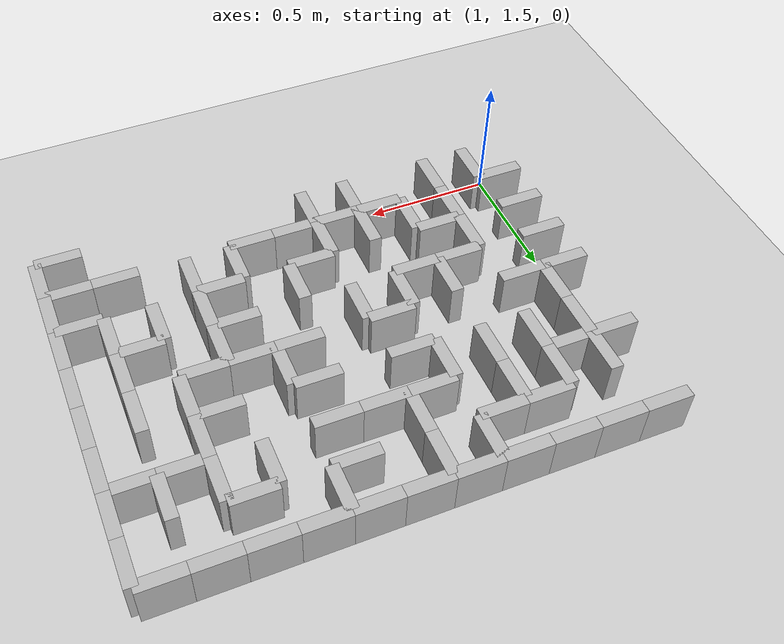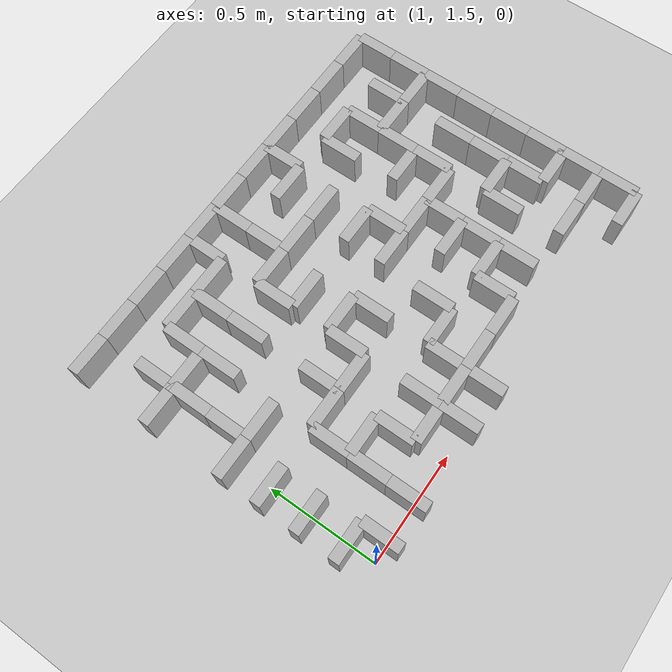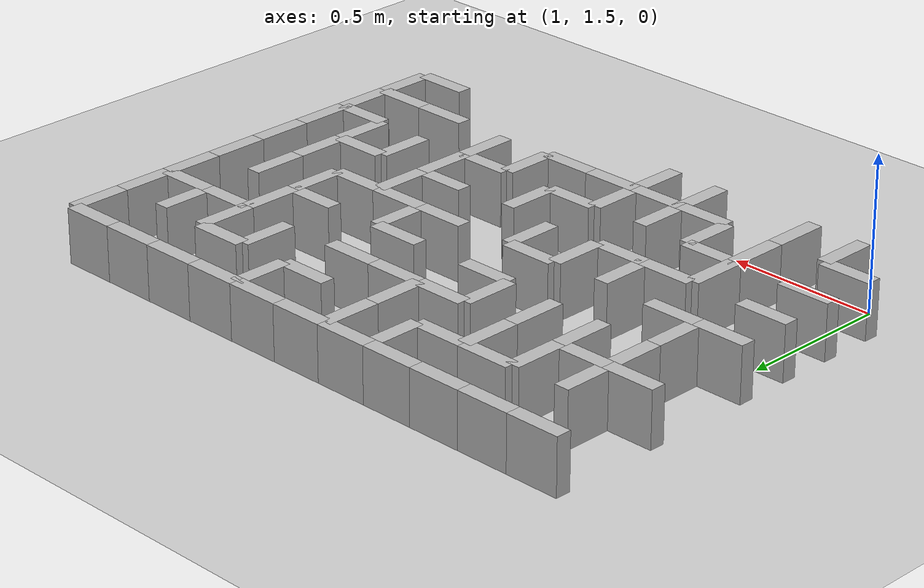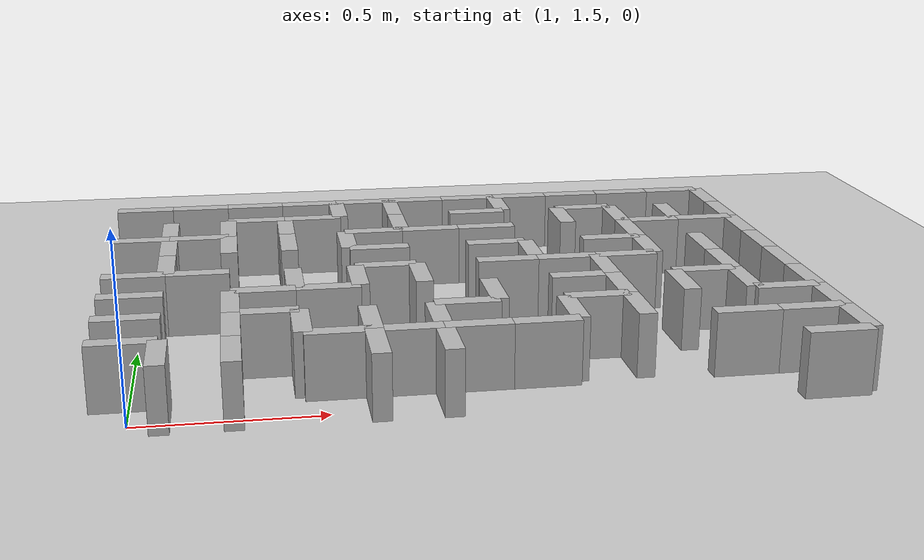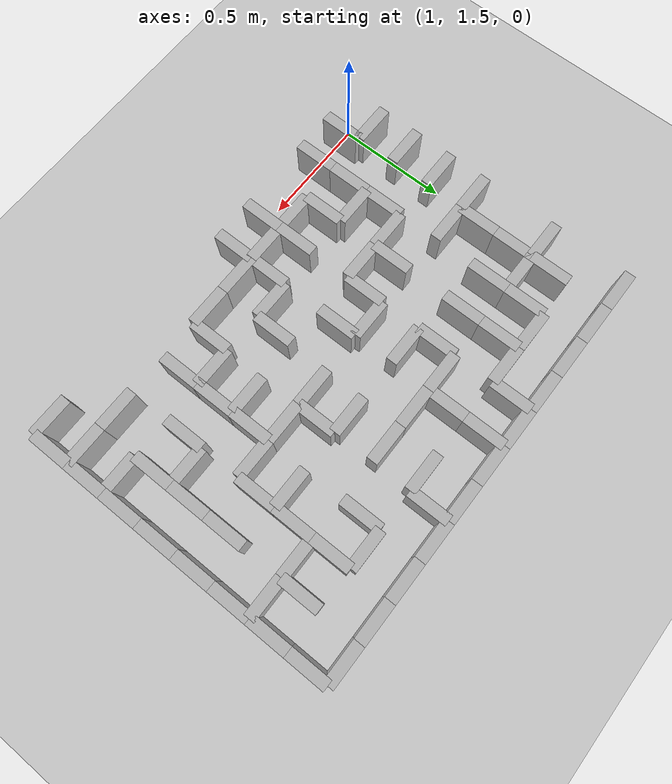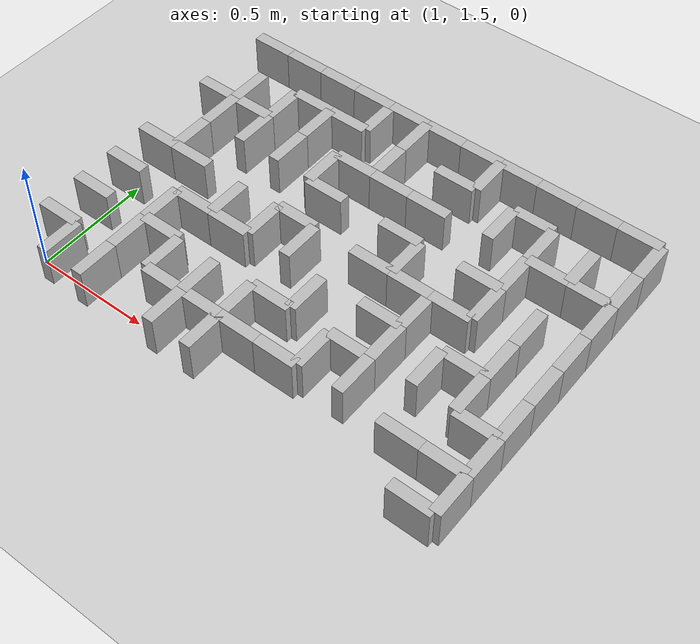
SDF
<sdf version="1.6">
 <world name="default">
  <model name="ground_plane">
   <static>1</static>
   <link name="link">
    <collision name="collision">
     <geometry><plane><normal>0 0 1</normal><size>100 100</size></plane></geometry>
     <surface><friction><ode><mu>100</mu><mu2>50</mu2></ode></friction></surface>
    </collision>
    <visual name="visual">
     <cast_shadows>0</cast_shadows>
     <geometry><plane><normal>0 0 1</normal><size>100 100</size></plane></geometry>
     <material>
      <script><uri>file://media/materials/scripts/gazebo.material</uri><name>Gazebo/Grey</name></script>
     </material>
    </visual>
   </link>
  </model>
  <model name="labyrinth_wall276">
   <pose>1.080000 1.530000 0.09 0 0 1.570796</pose>
   <link name="link">
    <inertial><mass>3.0</mass></inertial>
    <collision name="collision"><geometry><box><size>0.180 0.050 0.180</size></box></geometry></collision>
    <visual name="visual"><geometry><box><size>0.180 0.050 0.180</size></box></geometry></visual>
   </link>
   <static>true</static>
  </model>
  <model name="labyrinth_wall278">
   <pose>1.260000 1.530000 0.09 0 0 1.570796</pose>
   <link name="link">
    <inertial><mass>3.0</mass></inertial>
    <collision name="collision"><geometry><box><size>0.180 0.050 0.180</size></box></geometry></collision>
    <visual name="visual"><geometry><box><size>0.180 0.050 0.180</size></box></geometry></visual>
   </link>
   <static>true</static>
  </model>
  <model name="labyrinth_wall282">
   <pose>1.620000 1.530000 0.09 0 0 1.570796</pose>
   <link name="link">
    <inertial><mass>3.0</mass></inertial>
    <collision name="collision"><geometry><box><size>0.180 0.050 0.180</size></box></geometry></collision>
    <visual name="visual"><geometry><box><size>0.180 0.050 0.180</size></box></geometry></visual>
   </link>
   <static>true</static>
  </model>
  <model name="labyrinth_wall284">
   <pose>1.800000 1.530000 0.09 0 0 1.570796</pose>
   <link name="link">
    <inertial><mass>3.0</mass></inertial>
    <collision name="collision"><geometry><box><size>0.180 0.050 0.180</size></box></geometry></collision>
    <visual name="visual"><geometry><box><size>0.180 0.050 0.180</size></box></geometry></visual>
   </link>
   <static>true</static>
  </model>
  <model name="labyrinth_wall295">
   <pose>2.790000 1.440000 0.09 0 0 0.000000</pose>
   <link name="link">
    <inertial><mass>3.0</mass></inertial>
    <collision name="collision"><geometry><box><size>0.180 0.050 0.180</size></box></geometry></collision>
    <visual name="visual"><geometry><box><size>0.180 0.050 0.180</size></box></geometry></visual>
   </link>
   <static>true</static>
  </model>
  <model name="labyrinth_wall296">
   <pose>2.880000 1.530000 0.09 0 0 1.570796</pose>
   <link name="link">
    <inertial><mass>3.0</mass></inertial>
    <collision name="collision"><geometry><box><size>0.180 0.050 0.180</size></box></geometry></collision>
    <visual name="visual"><geometry><box><size>0.180 0.050 0.180</size></box></geometry></visual>
   </link>
   <static>true</static>
  </model>
  <model name="labyrinth_wall308">
   <pose>0.990000 1.620000 0.09 0 0 0.000000</pose>
   <link name="link">
    <inertial><mass>3.0</mass></inertial>
    <collision name="collision"><geometry><box><size>0.180 0.050 0.180</size></box></geometry></collision>
    <visual name="visual"><geometry><box><size>0.180 0.050 0.180</size></box></geometry></visual>
   </link>
   <static>true</static>
  </model>
  <model name="labyrinth_wall311">
   <pose>1.260000 1.710000 0.09 0 0 1.570796</pose>
   <link name="link">
    <inertial><mass>3.0</mass></inertial>
    <collision name="collision"><geometry><box><size>0.180 0.050 0.180</size></box></geometry></collision>
    <visual name="visual"><geometry><box><size>0.180 0.050 0.180</size></box></geometry></visual>
   </link>
   <static>true</static>
  </model>
  <model name="labyrinth_wall313">
   <pose>1.440000 1.710000 0.09 0 0 1.570796</pose>
   <link name="link">
    <inertial><mass>3.0</mass></inertial>
    <collision name="collision"><geometry><box><size>0.180 0.050 0.180</size></box></geometry></collision>
    <visual name="visual"><geometry><box><size>0.180 0.050 0.180</size></box></geometry></visual>
   </link>
   <static>true</static>
  </model>
  <model name="labyrinth_wall314">
   <pose>1.530000 1.620000 0.09 0 0 0.000000</pose>
   <link name="link">
    <inertial><mass>3.0</mass></inertial>
    <collision name="collision"><geometry><box><size>0.180 0.050 0.180</size></box></geometry></collision>
    <visual name="visual"><geometry><box><size>0.180 0.050 0.180</size></box></geometry></visual>
   </link>
   <static>true</static>
  </model>
  <model name="labyrinth_wall315">
   <pose>1.620000 1.710000 0.09 0 0 1.570796</pose>
   <link name="link">
    <inertial><mass>3.0</mass></inertial>
    <collision name="collision"><geometry><box><size>0.180 0.050 0.180</size></box></geometry></collision>
    <visual name="visual"><geometry><box><size>0.180 0.050 0.180</size></box></geometry></visual>
   </link>
   <static>true</static>
  </model>
  <model name="labyrinth_wall316">
   <pose>1.710000 1.620000 0.09 0 0 0.000000</pose>
   <link name="link">
    <inertial><mass>3.0</mass></inertial>
    <collision name="collision"><geometry><box><size>0.180 0.050 0.180</size></box></geometry></collision>
    <visual name="visual"><geometry><box><size>0.180 0.050 0.180</size></box></geometry></visual>
   </link>
   <static>true</static>
  </model>
  <model name="labyrinth_wall317">
   <pose>1.800000 1.710000 0.09 0 0 1.570796</pose>
   <link name="link">
    <inertial><mass>3.0</mass></inertial>
    <collision name="collision"><geometry><box><size>0.180 0.050 0.180</size></box></geometry></collision>
    <visual name="visual"><geometry><box><size>0.180 0.050 0.180</size></box></geometry></visual>
   </link>
   <static>true</static>
  </model>
  <model name="labyrinth_wall318">
   <pose>1.890000 1.620000 0.09 0 0 0.000000</pose>
   <link name="link">
    <inertial><mass>3.0</mass></inertial>
    <collision name="collision"><geometry><box><size>0.180 0.050 0.180</size></box></geometry></collision>
    <visual name="visual"><geometry><box><size>0.180 0.050 0.180</size></box></geometry></visual>
   </link>
   <static>true</static>
  </model>
  <model name="labyrinth_wall320">
   <pose>2.070000 1.620000 0.09 0 0 0.000000</pose>
   <link name="link">
    <inertial><mass>3.0</mass></inertial>
    <collision name="collision"><geometry><box><size>0.180 0.050 0.180</size></box></geometry></collision>
    <visual name="visual"><geometry><box><size>0.180 0.050 0.180</size></box></geometry></visual>
   </link>
   <static>true</static>
  </model>
  <model name="labyrinth_wall321">
   <pose>2.160000 1.710000 0.09 0 0 1.570796</pose>
   <link name="link">
    <inertial><mass>3.0</mass></inertial>
    <collision name="collision"><geometry><box><size>0.180 0.050 0.180</size></box></geometry></collision>
    <visual name="visual"><geometry><box><size>0.180 0.050 0.180</size></box></geometry></visual>
   </link>
   <static>true</static>
  </model>
  <model name="labyrinth_wall323">
   <pose>2.340000 1.710000 0.09 0 0 1.570796</pose>
   <link name="link">
    <inertial><mass>3.0</mass></inertial>
    <collision name="collision"><geometry><box><size>0.180 0.050 0.180</size></box></geometry></collision>
    <visual name="visual"><geometry><box><size>0.180 0.050 0.180</size></box></geometry></visual>
   </link>
   <static>true</static>
  </model>
  <model name="labyrinth_wall326">
   <pose>2.610000 1.620000 0.09 0 0 0.000000</pose>
   <link name="link">
    <inertial><mass>3.0</mass></inertial>
    <collision name="collision"><geometry><box><size>0.180 0.050 0.180</size></box></geometry></collision>
    <visual name="visual"><geometry><box><size>0.180 0.050 0.180</size></box></geometry></visual>
   </link>
   <static>true</static>
  </model>
  <model name="labyrinth_wall328">
   <pose>2.790000 1.620000 0.09 0 0 0.000000</pose>
   <link name="link">
    <inertial><mass>3.0</mass></inertial>
    <collision name="collision"><geometry><box><size>0.180 0.050 0.180</size></box></geometry></collision>
    <visual name="visual"><geometry><box><size>0.180 0.050 0.180</size></box></geometry></visual>
   </link>
   <static>true</static>
  </model>
  <model name="labyrinth_wall329">
   <pose>2.880000 1.710000 0.09 0 0 1.570796</pose>
   <link name="link">
    <inertial><mass>3.0</mass></inertial>
    <collision name="collision"><geometry><box><size>0.180 0.050 0.180</size></box></geometry></collision>
    <visual name="visual"><geometry><box><size>0.180 0.050 0.180</size></box></geometry></visual>
   </link>
   <static>true</static>
  </model>
  <model name="labyrinth_wall341">
   <pose>0.990000 1.800000 0.09 0 0 0.000000</pose>
   <link name="link">
    <inertial><mass>3.0</mass></inertial>
    <collision name="collision"><geometry><box><size>0.180 0.050 0.180</size></box></geometry></collision>
    <visual name="visual"><geometry><box><size>0.180 0.050 0.180</size></box></geometry></visual>
   </link>
   <static>true</static>
  </model>
  <model name="labyrinth_wall344">
   <pose>1.260000 1.890000 0.09 0 0 1.570796</pose>
   <link name="link">
    <inertial><mass>3.0</mass></inertial>
    <collision name="collision"><geometry><box><size>0.180 0.050 0.180</size></box></geometry></collision>
    <visual name="visual"><geometry><box><size>0.180 0.050 0.180</size></box></geometry></visual>
   </link>
   <static>true</static>
  </model>
  <model name="labyrinth_wall345">
   <pose>1.350000 1.800000 0.09 0 0 0.000000</pose>
   <link name="link">
    <inertial><mass>3.0</mass></inertial>
    <collision name="collision"><geometry><box><size>0.180 0.050 0.180</size></box></geometry></collision>
    <visual name="visual"><geometry><box><size>0.180 0.050 0.180</size></box></geometry></visual>
   </link>
   <static>true</static>
  </model>
  <model name="labyrinth_wall351">
   <pose>1.890000 1.800000 0.09 0 0 0.000000</pose>
   <link name="link">
    <inertial><mass>3.0</mass></inertial>
    <collision name="collision"><geometry><box><size>0.180 0.050 0.180</size></box></geometry></collision>
    <visual name="visual"><geometry><box><size>0.180 0.050 0.180</size></box></geometry></visual>
   </link>
   <static>true</static>
  </model>
  <model name="labyrinth_wall352">
   <pose>1.980000 1.890000 0.09 0 0 1.570796</pose>
   <link name="link">
    <inertial><mass>3.0</mass></inertial>
    <collision name="collision"><geometry><box><size>0.180 0.050 0.180</size></box></geometry></collision>
    <visual name="visual"><geometry><box><size>0.180 0.050 0.180</size></box></geometry></visual>
   </link>
   <static>true</static>
  </model>
  <model name="labyrinth_wall355">
   <pose>2.250000 1.800000 0.09 0 0 0.000000</pose>
   <link name="link">
    <inertial><mass>3.0</mass></inertial>
    <collision name="collision"><geometry><box><size>0.180 0.050 0.180</size></box></geometry></collision>
    <visual name="visual"><geometry><box><size>0.180 0.050 0.180</size></box></geometry></visual>
   </link>
   <static>true</static>
  </model>
  <model name="labyrinth_wall356">
   <pose>2.340000 1.890000 0.09 0 0 1.570796</pose>
   <link name="link">
    <inertial><mass>3.0</mass></inertial>
    <collision name="collision"><geometry><box><size>0.180 0.050 0.180</size></box></geometry></collision>
    <visual name="visual"><geometry><box><size>0.180 0.050 0.180</size></box></geometry></visual>
   </link>
   <static>true</static>
  </model>
  <model name="labyrinth_wall358">
   <pose>2.520000 1.890000 0.09 0 0 1.570796</pose>
   <link name="link">
    <inertial><mass>3.0</mass></inertial>
    <collision name="collision"><geometry><box><size>0.180 0.050 0.180</size></box></geometry></collision>
    <visual name="visual"><geometry><box><size>0.180 0.050 0.180</size></box></geometry></visual>
   </link>
   <static>true</static>
  </model>
  <model name="labyrinth_wall360">
   <pose>2.700000 1.890000 0.09 0 0 1.570796</pose>
   <link name="link">
    <inertial><mass>3.0</mass></inertial>
    <collision name="collision"><geometry><box><size>0.180 0.050 0.180</size></box></geometry></collision>
    <visual name="visual"><geometry><box><size>0.180 0.050 0.180</size></box></geometry></visual>
   </link>
   <static>true</static>
  </model>
  <model name="labyrinth_wall361">
   <pose>2.790000 1.800000 0.09 0 0 0.000000</pose>
   <link name="link">
    <inertial><mass>3.0</mass></inertial>
    <collision name="collision"><geometry><box><size>0.180 0.050 0.180</size></box></geometry></collision>
    <visual name="visual"><geometry><box><size>0.180 0.050 0.180</size></box></geometry></visual>
   </link>
   <static>true</static>
  </model>
  <model name="labyrinth_wall362">
   <pose>2.880000 1.890000 0.09 0 0 1.570796</pose>
   <link name="link">
    <inertial><mass>3.0</mass></inertial>
    <collision name="collision"><geometry><box><size>0.180 0.050 0.180</size></box></geometry></collision>
    <visual name="visual"><geometry><box><size>0.180 0.050 0.180</size></box></geometry></visual>
   </link>
   <static>true</static>
  </model>
  <model name="labyrinth_wall374">
   <pose>0.990000 1.980000 0.09 0 0 0.000000</pose>
   <link name="link">
    <inertial><mass>3.0</mass></inertial>
    <collision name="collision"><geometry><box><size>0.180 0.050 0.180</size></box></geometry></collision>
    <visual name="visual"><geometry><box><size>0.180 0.050 0.180</size></box></geometry></visual>
   </link>
   <static>true</static>
  </model>
  <model name="labyrinth_wall378">
   <pose>1.350000 1.980000 0.09 0 0 0.000000</pose>
   <link name="link">
    <inertial><mass>3.0</mass></inertial>
    <collision name="collision"><geometry><box><size>0.180 0.050 0.180</size></box></geometry></collision>
    <visual name="visual"><geometry><box><size>0.180 0.050 0.180</size></box></geometry></visual>
   </link>
   <static>true</static>
  </model>
  <model name="labyrinth_wall379">
   <pose>1.440000 2.070000 0.09 0 0 1.570796</pose>
   <link name="link">
    <inertial><mass>3.0</mass></inertial>
    <collision name="collision"><geometry><box><size>0.180 0.050 0.180</size></box></geometry></collision>
    <visual name="visual"><geometry><box><size>0.180 0.050 0.180</size></box></geometry></visual>
   </link>
   <static>true</static>
  </model>
  <model name="labyrinth_wall380">
   <pose>1.530000 1.980000 0.09 0 0 0.000000</pose>
   <link name="link">
    <inertial><mass>3.0</mass></inertial>
    <collision name="collision"><geometry><box><size>0.180 0.050 0.180</size></box></geometry></collision>
    <visual name="visual"><geometry><box><size>0.180 0.050 0.180</size></box></geometry></visual>
   </link>
   <static>true</static>
  </model>
  <model name="labyrinth_wall381">
   <pose>1.620000 2.070000 0.09 0 0 1.570796</pose>
   <link name="link">
    <inertial><mass>3.0</mass></inertial>
    <collision name="collision"><geometry><box><size>0.180 0.050 0.180</size></box></geometry></collision>
    <visual name="visual"><geometry><box><size>0.180 0.050 0.180</size></box></geometry></visual>
   </link>
   <static>true</static>
  </model>
  <model name="labyrinth_wall383">
   <pose>1.800000 2.070000 0.09 0 0 1.570796</pose>
   <link name="link">
    <inertial><mass>3.0</mass></inertial>
    <collision name="collision"><geometry><box><size>0.180 0.050 0.180</size></box></geometry></collision>
    <visual name="visual"><geometry><box><size>0.180 0.050 0.180</size></box></geometry></visual>
   </link>
   <static>true</static>
  </model>
  <model name="labyrinth_wall388">
   <pose>2.250000 1.980000 0.09 0 0 0.000000</pose>
   <link name="link">
    <inertial><mass>3.0</mass></inertial>
    <collision name="collision"><geometry><box><size>0.180 0.050 0.180</size></box></geometry></collision>
    <visual name="visual"><geometry><box><size>0.180 0.050 0.180</size></box></geometry></visual>
   </link>
   <static>true</static>
  </model>
  <model name="labyrinth_wall389">
   <pose>2.340000 2.070000 0.09 0 0 1.570796</pose>
   <link name="link">
    <inertial><mass>3.0</mass></inertial>
    <collision name="collision"><geometry><box><size>0.180 0.050 0.180</size></box></geometry></collision>
    <visual name="visual"><geometry><box><size>0.180 0.050 0.180</size></box></geometry></visual>
   </link>
   <static>true</static>
  </model>
  <model name="labyrinth_wall392">
   <pose>2.610000 1.980000 0.09 0 0 0.000000</pose>
   <link name="link">
    <inertial><mass>3.0</mass></inertial>
    <collision name="collision"><geometry><box><size>0.180 0.050 0.180</size></box></geometry></collision>
    <visual name="visual"><geometry><box><size>0.180 0.050 0.180</size></box></geometry></visual>
   </link>
   <static>true</static>
  </model>
  <model name="labyrinth_wall393">
   <pose>2.700000 2.070000 0.09 0 0 1.570796</pose>
   <link name="link">
    <inertial><mass>3.0</mass></inertial>
    <collision name="collision"><geometry><box><size>0.180 0.050 0.180</size></box></geometry></collision>
    <visual name="visual"><geometry><box><size>0.180 0.050 0.180</size></box></geometry></visual>
   </link>
   <static>true</static>
  </model>
  <model name="labyrinth_wall395">
   <pose>2.880000 2.070000 0.09 0 0 1.570796</pose>
   <link name="link">
    <inertial><mass>3.0</mass></inertial>
    <collision name="collision"><geometry><box><size>0.180 0.050 0.180</size></box></geometry></collision>
    <visual name="visual"><geometry><box><size>0.180 0.050 0.180</size></box></geometry></visual>
   </link>
   <static>true</static>
  </model>
  <model name="labyrinth_wall407">
   <pose>0.990000 2.160000 0.09 0 0 0.000000</pose>
   <link name="link">
    <inertial><mass>3.0</mass></inertial>
    <collision name="collision"><geometry><box><size>0.180 0.050 0.180</size></box></geometry></collision>
    <visual name="visual"><geometry><box><size>0.180 0.050 0.180</size></box></geometry></visual>
   </link>
   <static>true</static>
  </model>
  <model name="labyrinth_wall408">
   <pose>1.080000 2.250000 0.09 0 0 1.570796</pose>
   <link name="link">
    <inertial><mass>3.0</mass></inertial>
    <collision name="collision"><geometry><box><size>0.180 0.050 0.180</size></box></geometry></collision>
    <visual name="visual"><geometry><box><size>0.180 0.050 0.180</size></box></geometry></visual>
   </link>
   <static>true</static>
  </model>
  <model name="labyrinth_wall409">
   <pose>1.170000 2.160000 0.09 0 0 0.000000</pose>
   <link name="link">
    <inertial><mass>3.0</mass></inertial>
    <collision name="collision"><geometry><box><size>0.180 0.050 0.180</size></box></geometry></collision>
    <visual name="visual"><geometry><box><size>0.180 0.050 0.180</size></box></geometry></visual>
   </link>
   <static>true</static>
  </model>
  <model name="labyrinth_wall415">
   <pose>1.710000 2.160000 0.09 0 0 0.000000</pose>
   <link name="link">
    <inertial><mass>3.0</mass></inertial>
    <collision name="collision"><geometry><box><size>0.180 0.050 0.180</size></box></geometry></collision>
    <visual name="visual"><geometry><box><size>0.180 0.050 0.180</size></box></geometry></visual>
   </link>
   <static>true</static>
  </model>
  <model name="labyrinth_wall419">
   <pose>2.070000 2.160000 0.09 0 0 0.000000</pose>
   <link name="link">
    <inertial><mass>3.0</mass></inertial>
    <collision name="collision"><geometry><box><size>0.180 0.050 0.180</size></box></geometry></collision>
    <visual name="visual"><geometry><box><size>0.180 0.050 0.180</size></box></geometry></visual>
   </link>
   <static>true</static>
  </model>
  <model name="labyrinth_wall420">
   <pose>2.160000 2.250000 0.09 0 0 1.570796</pose>
   <link name="link">
    <inertial><mass>3.0</mass></inertial>
    <collision name="collision"><geometry><box><size>0.180 0.050 0.180</size></box></geometry></collision>
    <visual name="visual"><geometry><box><size>0.180 0.050 0.180</size></box></geometry></visual>
   </link>
   <static>true</static>
  </model>
  <model name="labyrinth_wall421">
   <pose>2.250000 2.160000 0.09 0 0 0.000000</pose>
   <link name="link">
    <inertial><mass>3.0</mass></inertial>
    <collision name="collision"><geometry><box><size>0.180 0.050 0.180</size></box></geometry></collision>
    <visual name="visual"><geometry><box><size>0.180 0.050 0.180</size></box></geometry></visual>
   </link>
   <static>true</static>
  </model>
  <model name="labyrinth_wall423">
   <pose>2.430000 2.160000 0.09 0 0 0.000000</pose>
   <link name="link">
    <inertial><mass>3.0</mass></inertial>
    <collision name="collision"><geometry><box><size>0.180 0.050 0.180</size></box></geometry></collision>
    <visual name="visual"><geometry><box><size>0.180 0.050 0.180</size></box></geometry></visual>
   </link>
   <static>true</static>
  </model>
  <model name="labyrinth_wall424">
   <pose>2.520000 2.250000 0.09 0 0 1.570796</pose>
   <link name="link">
    <inertial><mass>3.0</mass></inertial>
    <collision name="collision"><geometry><box><size>0.180 0.050 0.180</size></box></geometry></collision>
    <visual name="visual"><geometry><box><size>0.180 0.050 0.180</size></box></geometry></visual>
   </link>
   <static>true</static>
  </model>
  <model name="labyrinth_wall426">
   <pose>2.700000 2.250000 0.09 0 0 1.570796</pose>
   <link name="link">
    <inertial><mass>3.0</mass></inertial>
    <collision name="collision"><geometry><box><size>0.180 0.050 0.180</size></box></geometry></collision>
    <visual name="visual"><geometry><box><size>0.180 0.050 0.180</size></box></geometry></visual>
   </link>
   <static>true</static>
  </model>
  <model name="labyrinth_wall428">
   <pose>2.880000 2.250000 0.09 0 0 1.570796</pose>
   <link name="link">
    <inertial><mass>3.0</mass></inertial>
    <collision name="collision"><geometry><box><size>0.180 0.050 0.180</size></box></geometry></collision>
    <visual name="visual"><geometry><box><size>0.180 0.050 0.180</size></box></geometry></visual>
   </link>
   <static>true</static>
  </model>
  <model name="labyrinth_wall441">
   <pose>1.080000 2.430000 0.09 0 0 1.570796</pose>
   <link name="link">
    <inertial><mass>3.0</mass></inertial>
    <collision name="collision"><geometry><box><size>0.180 0.050 0.180</size></box></geometry></collision>
    <visual name="visual"><geometry><box><size>0.180 0.050 0.180</size></box></geometry></visual>
   </link>
   <static>true</static>
  </model>
  <model name="labyrinth_wall443">
   <pose>1.260000 2.430000 0.09 0 0 1.570796</pose>
   <link name="link">
    <inertial><mass>3.0</mass></inertial>
    <collision name="collision"><geometry><box><size>0.180 0.050 0.180</size></box></geometry></collision>
    <visual name="visual"><geometry><box><size>0.180 0.050 0.180</size></box></geometry></visual>
   </link>
   <static>true</static>
  </model>
  <model name="labyrinth_wall445">
   <pose>1.440000 2.430000 0.09 0 0 1.570796</pose>
   <link name="link">
    <inertial><mass>3.0</mass></inertial>
    <collision name="collision"><geometry><box><size>0.180 0.050 0.180</size></box></geometry></collision>
    <visual name="visual"><geometry><box><size>0.180 0.050 0.180</size></box></geometry></visual>
   </link>
   <static>true</static>
  </model>
  <model name="labyrinth_wall447">
   <pose>1.620000 2.430000 0.09 0 0 1.570796</pose>
   <link name="link">
    <inertial><mass>3.0</mass></inertial>
    <collision name="collision"><geometry><box><size>0.180 0.050 0.180</size></box></geometry></collision>
    <visual name="visual"><geometry><box><size>0.180 0.050 0.180</size></box></geometry></visual>
   </link>
   <static>true</static>
  </model>
  <model name="labyrinth_wall448">
   <pose>1.710000 2.340000 0.09 0 0 0.000000</pose>
   <link name="link">
    <inertial><mass>3.0</mass></inertial>
    <collision name="collision"><geometry><box><size>0.180 0.050 0.180</size></box></geometry></collision>
    <visual name="visual"><geometry><box><size>0.180 0.050 0.180</size></box></geometry></visual>
   </link>
   <static>true</static>
  </model>
  <model name="labyrinth_wall452">
   <pose>2.070000 2.340000 0.09 0 0 0.000000</pose>
   <link name="link">
    <inertial><mass>3.0</mass></inertial>
    <collision name="collision"><geometry><box><size>0.180 0.050 0.180</size></box></geometry></collision>
    <visual name="visual"><geometry><box><size>0.180 0.050 0.180</size></box></geometry></visual>
   </link>
   <static>true</static>
  </model>
  <model name="labyrinth_wall456">
   <pose>2.430000 2.340000 0.09 0 0 0.000000</pose>
   <link name="link">
    <inertial><mass>3.0</mass></inertial>
    <collision name="collision"><geometry><box><size>0.180 0.050 0.180</size></box></geometry></collision>
    <visual name="visual"><geometry><box><size>0.180 0.050 0.180</size></box></geometry></visual>
   </link>
   <static>true</static>
  </model>
  <model name="labyrinth_wall457">
   <pose>2.520000 2.430000 0.09 0 0 1.570796</pose>
   <link name="link">
    <inertial><mass>3.0</mass></inertial>
    <collision name="collision"><geometry><box><size>0.180 0.050 0.180</size></box></geometry></collision>
    <visual name="visual"><geometry><box><size>0.180 0.050 0.180</size></box></geometry></visual>
   </link>
   <static>true</static>
  </model>
  <model name="labyrinth_wall461">
   <pose>2.880000 2.430000 0.09 0 0 1.570796</pose>
   <link name="link">
    <inertial><mass>3.0</mass></inertial>
    <collision name="collision"><geometry><box><size>0.180 0.050 0.180</size></box></geometry></collision>
    <visual name="visual"><geometry><box><size>0.180 0.050 0.180</size></box></geometry></visual>
   </link>
   <static>true</static>
  </model>
  <model name="labyrinth_wall473">
   <pose>0.990000 2.520000 0.09 0 0 0.000000</pose>
   <link name="link">
    <inertial><mass>3.0</mass></inertial>
    <collision name="collision"><geometry><box><size>0.180 0.050 0.180</size></box></geometry></collision>
    <visual name="visual"><geometry><box><size>0.180 0.050 0.180</size></box></geometry></visual>
   </link>
   <static>true</static>
  </model>
  <model name="labyrinth_wall474">
   <pose>1.080000 2.610000 0.09 0 0 1.570796</pose>
   <link name="link">
    <inertial><mass>3.0</mass></inertial>
    <collision name="collision"><geometry><box><size>0.180 0.050 0.180</size></box></geometry></collision>
    <visual name="visual"><geometry><box><size>0.180 0.050 0.180</size></box></geometry></visual>
   </link>
   <static>true</static>
  </model>
  <model name="labyrinth_wall475">
   <pose>1.170000 2.520000 0.09 0 0 0.000000</pose>
   <link name="link">
    <inertial><mass>3.0</mass></inertial>
    <collision name="collision"><geometry><box><size>0.180 0.050 0.180</size></box></geometry></collision>
    <visual name="visual"><geometry><box><size>0.180 0.050 0.180</size></box></geometry></visual>
   </link>
   <static>true</static>
  </model>
  <model name="labyrinth_wall476">
   <pose>1.260000 2.610000 0.09 0 0 1.570796</pose>
   <link name="link">
    <inertial><mass>3.0</mass></inertial>
    <collision name="collision"><geometry><box><size>0.180 0.050 0.180</size></box></geometry></collision>
    <visual name="visual"><geometry><box><size>0.180 0.050 0.180</size></box></geometry></visual>
   </link>
   <static>true</static>
  </model>
  <model name="labyrinth_wall478">
   <pose>1.440000 2.610000 0.09 0 0 1.570796</pose>
   <link name="link">
    <inertial><mass>3.0</mass></inertial>
    <collision name="collision"><geometry><box><size>0.180 0.050 0.180</size></box></geometry></collision>
    <visual name="visual"><geometry><box><size>0.180 0.050 0.180</size></box></geometry></visual>
   </link>
   <static>true</static>
  </model>
  <model name="labyrinth_wall481">
   <pose>1.710000 2.520000 0.09 0 0 0.000000</pose>
   <link name="link">
    <inertial><mass>3.0</mass></inertial>
    <collision name="collision"><geometry><box><size>0.180 0.050 0.180</size></box></geometry></collision>
    <visual name="visual"><geometry><box><size>0.180 0.050 0.180</size></box></geometry></visual>
   </link>
   <static>true</static>
  </model>
  <model name="labyrinth_wall482">
   <pose>1.800000 2.610000 0.09 0 0 1.570796</pose>
   <link name="link">
    <inertial><mass>3.0</mass></inertial>
    <collision name="collision"><geometry><box><size>0.180 0.050 0.180</size></box></geometry></collision>
    <visual name="visual"><geometry><box><size>0.180 0.050 0.180</size></box></geometry></visual>
   </link>
   <static>true</static>
  </model>
  <model name="labyrinth_wall483">
   <pose>1.890000 2.520000 0.09 0 0 0.000000</pose>
   <link name="link">
    <inertial><mass>3.0</mass></inertial>
    <collision name="collision"><geometry><box><size>0.180 0.050 0.180</size></box></geometry></collision>
    <visual name="visual"><geometry><box><size>0.180 0.050 0.180</size></box></geometry></visual>
   </link>
   <static>true</static>
  </model>
  <model name="labyrinth_wall485">
   <pose>2.070000 2.520000 0.09 0 0 0.000000</pose>
   <link name="link">
    <inertial><mass>3.0</mass></inertial>
    <collision name="collision"><geometry><box><size>0.180 0.050 0.180</size></box></geometry></collision>
    <visual name="visual"><geometry><box><size>0.180 0.050 0.180</size></box></geometry></visual>
   </link>
   <static>true</static>
  </model>
  <model name="labyrinth_wall488">
   <pose>2.340000 2.610000 0.09 0 0 1.570796</pose>
   <link name="link">
    <inertial><mass>3.0</mass></inertial>
    <collision name="collision"><geometry><box><size>0.180 0.050 0.180</size></box></geometry></collision>
    <visual name="visual"><geometry><box><size>0.180 0.050 0.180</size></box></geometry></visual>
   </link>
   <static>true</static>
  </model>
  <model name="labyrinth_wall490">
   <pose>2.520000 2.610000 0.09 0 0 1.570796</pose>
   <link name="link">
    <inertial><mass>3.0</mass></inertial>
    <collision name="collision"><geometry><box><size>0.180 0.050 0.180</size></box></geometry></collision>
    <visual name="visual"><geometry><box><size>0.180 0.050 0.180</size></box></geometry></visual>
   </link>
   <static>true</static>
  </model>
  <model name="labyrinth_wall491">
   <pose>2.610000 2.520000 0.09 0 0 0.000000</pose>
   <link name="link">
    <inertial><mass>3.0</mass></inertial>
    <collision name="collision"><geometry><box><size>0.180 0.050 0.180</size></box></geometry></collision>
    <visual name="visual"><geometry><box><size>0.180 0.050 0.180</size></box></geometry></visual>
   </link>
   <static>true</static>
  </model>
  <model name="labyrinth_wall492">
   <pose>2.700000 2.610000 0.09 0 0 1.570796</pose>
   <link name="link">
    <inertial><mass>3.0</mass></inertial>
    <collision name="collision"><geometry><box><size>0.180 0.050 0.180</size></box></geometry></collision>
    <visual name="visual"><geometry><box><size>0.180 0.050 0.180</size></box></geometry></visual>
   </link>
   <static>true</static>
  </model>
  <model name="labyrinth_wall493">
   <pose>2.790000 2.520000 0.09 0 0 0.000000</pose>
   <link name="link">
    <inertial><mass>3.0</mass></inertial>
    <collision name="collision"><geometry><box><size>0.180 0.050 0.180</size></box></geometry></collision>
    <visual name="visual"><geometry><box><size>0.180 0.050 0.180</size></box></geometry></visual>
   </link>
   <static>true</static>
  </model>
  <model name="labyrinth_wall494">
   <pose>2.880000 2.610000 0.09 0 0 1.570796</pose>
   <link name="link">
    <inertial><mass>3.0</mass></inertial>
    <collision name="collision"><geometry><box><size>0.180 0.050 0.180</size></box></geometry></collision>
    <visual name="visual"><geometry><box><size>0.180 0.050 0.180</size></box></geometry></visual>
   </link>
   <static>true</static>
  </model>
  <model name="labyrinth_wall513">
   <pose>0.990000 2.880000 0.09 0 0 0.000000</pose>
   <link name="link">
    <inertial><mass>3.0</mass></inertial>
    <collision name="collision"><geometry><box><size>0.180 0.050 0.180</size></box></geometry></collision>
    <visual name="visual"><geometry><box><size>0.180 0.050 0.180</size></box></geometry></visual>
   </link>
   <static>true</static>
  </model>
  <model name="labyrinth_wall516">
   <pose>1.170000 2.880000 0.09 0 0 0.000000</pose>
   <link name="link">
    <inertial><mass>3.0</mass></inertial>
    <collision name="collision"><geometry><box><size>0.180 0.050 0.180</size></box></geometry></collision>
    <visual name="visual"><geometry><box><size>0.180 0.050 0.180</size></box></geometry></visual>
   </link>
   <static>true</static>
  </model>
  <model name="labyrinth_wall517">
   <pose>1.350000 2.700000 0.09 0 0 0.000000</pose>
   <link name="link">
    <inertial><mass>3.0</mass></inertial>
    <collision name="collision"><geometry><box><size>0.180 0.050 0.180</size></box></geometry></collision>
    <visual name="visual"><geometry><box><size>0.180 0.050 0.180</size></box></geometry></visual>
   </link>
   <static>true</static>
  </model>
  <model name="labyrinth_wall519">
   <pose>1.350000 2.880000 0.09 0 0 0.000000</pose>
   <link name="link">
    <inertial><mass>3.0</mass></inertial>
    <collision name="collision"><geometry><box><size>0.180 0.050 0.180</size></box></geometry></collision>
    <visual name="visual"><geometry><box><size>0.180 0.050 0.180</size></box></geometry></visual>
   </link>
   <static>true</static>
  </model>
  <model name="labyrinth_wall520">
   <pose>1.530000 2.700000 0.09 0 0 0.000000</pose>
   <link name="link">
    <inertial><mass>3.0</mass></inertial>
    <collision name="collision"><geometry><box><size>0.180 0.050 0.180</size></box></geometry></collision>
    <visual name="visual"><geometry><box><size>0.180 0.050 0.180</size></box></geometry></visual>
   </link>
   <static>true</static>
  </model>
  <model name="labyrinth_wall521">
   <pose>1.620000 2.790000 0.09 0 0 1.570796</pose>
   <link name="link">
    <inertial><mass>3.0</mass></inertial>
    <collision name="collision"><geometry><box><size>0.180 0.050 0.180</size></box></geometry></collision>
    <visual name="visual"><geometry><box><size>0.180 0.050 0.180</size></box></geometry></visual>
   </link>
   <static>true</static>
  </model>
  <model name="labyrinth_wall522">
   <pose>1.530000 2.880000 0.09 0 0 0.000000</pose>
   <link name="link">
    <inertial><mass>3.0</mass></inertial>
    <collision name="collision"><geometry><box><size>0.180 0.050 0.180</size></box></geometry></collision>
    <visual name="visual"><geometry><box><size>0.180 0.050 0.180</size></box></geometry></visual>
   </link>
   <static>true</static>
  </model>
  <model name="labyrinth_wall524">
   <pose>1.800000 2.790000 0.09 0 0 1.570796</pose>
   <link name="link">
    <inertial><mass>3.0</mass></inertial>
    <collision name="collision"><geometry><box><size>0.180 0.050 0.180</size></box></geometry></collision>
    <visual name="visual"><geometry><box><size>0.180 0.050 0.180</size></box></geometry></visual>
   </link>
   <static>true</static>
  </model>
  <model name="labyrinth_wall525">
   <pose>1.710000 2.880000 0.09 0 0 0.000000</pose>
   <link name="link">
    <inertial><mass>3.0</mass></inertial>
    <collision name="collision"><geometry><box><size>0.180 0.050 0.180</size></box></geometry></collision>
    <visual name="visual"><geometry><box><size>0.180 0.050 0.180</size></box></geometry></visual>
   </link>
   <static>true</static>
  </model>
  <model name="labyrinth_wall528">
   <pose>1.890000 2.880000 0.09 0 0 0.000000</pose>
   <link name="link">
    <inertial><mass>3.0</mass></inertial>
    <collision name="collision"><geometry><box><size>0.180 0.050 0.180</size></box></geometry></collision>
    <visual name="visual"><geometry><box><size>0.180 0.050 0.180</size></box></geometry></visual>
   </link>
   <static>true</static>
  </model>
  <model name="labyrinth_wall529">
   <pose>2.070000 2.700000 0.09 0 0 0.000000</pose>
   <link name="link">
    <inertial><mass>3.0</mass></inertial>
    <collision name="collision"><geometry><box><size>0.180 0.050 0.180</size></box></geometry></collision>
    <visual name="visual"><geometry><box><size>0.180 0.050 0.180</size></box></geometry></visual>
   </link>
   <static>true</static>
  </model>
  <model name="labyrinth_wall530">
   <pose>2.160000 2.790000 0.09 0 0 1.570796</pose>
   <link name="link">
    <inertial><mass>3.0</mass></inertial>
    <collision name="collision"><geometry><box><size>0.180 0.050 0.180</size></box></geometry></collision>
    <visual name="visual"><geometry><box><size>0.180 0.050 0.180</size></box></geometry></visual>
   </link>
   <static>true</static>
  </model>
  <model name="labyrinth_wall531">
   <pose>2.070000 2.880000 0.09 0 0 0.000000</pose>
   <link name="link">
    <inertial><mass>3.0</mass></inertial>
    <collision name="collision"><geometry><box><size>0.180 0.050 0.180</size></box></geometry></collision>
    <visual name="visual"><geometry><box><size>0.180 0.050 0.180</size></box></geometry></visual>
   </link>
   <static>true</static>
  </model>
  <model name="labyrinth_wall534">
   <pose>2.250000 2.880000 0.09 0 0 0.000000</pose>
   <link name="link">
    <inertial><mass>3.0</mass></inertial>
    <collision name="collision"><geometry><box><size>0.180 0.050 0.180</size></box></geometry></collision>
    <visual name="visual"><geometry><box><size>0.180 0.050 0.180</size></box></geometry></visual>
   </link>
   <static>true</static>
  </model>
  <model name="labyrinth_wall535">
   <pose>2.430000 2.700000 0.09 0 0 0.000000</pose>
   <link name="link">
    <inertial><mass>3.0</mass></inertial>
    <collision name="collision"><geometry><box><size>0.180 0.050 0.180</size></box></geometry></collision>
    <visual name="visual"><geometry><box><size>0.180 0.050 0.180</size></box></geometry></visual>
   </link>
   <static>true</static>
  </model>
  <model name="labyrinth_wall537">
   <pose>2.430000 2.880000 0.09 0 0 0.000000</pose>
   <link name="link">
    <inertial><mass>3.0</mass></inertial>
    <collision name="collision"><geometry><box><size>0.180 0.050 0.180</size></box></geometry></collision>
    <visual name="visual"><geometry><box><size>0.180 0.050 0.180</size></box></geometry></visual>
   </link>
   <static>true</static>
  </model>
  <model name="labyrinth_wall540">
   <pose>2.610000 2.880000 0.09 0 0 0.000000</pose>
   <link name="link">
    <inertial><mass>3.0</mass></inertial>
    <collision name="collision"><geometry><box><size>0.180 0.050 0.180</size></box></geometry></collision>
    <visual name="visual"><geometry><box><size>0.180 0.050 0.180</size></box></geometry></visual>
   </link>
   <static>true</static>
  </model>
  <model name="labyrinth_wall542">
   <pose>2.880000 2.790000 0.09 0 0 1.570796</pose>
   <link name="link">
    <inertial><mass>3.0</mass></inertial>
    <collision name="collision"><geometry><box><size>0.180 0.050 0.180</size></box></geometry></collision>
    <visual name="visual"><geometry><box><size>0.180 0.050 0.180</size></box></geometry></visual>
   </link>
   <static>true</static>
  </model>
  <model name="labyrinth_wall543">
   <pose>2.790000 2.880000 0.09 0 0 0.000000</pose>
   <link name="link">
    <inertial><mass>3.0</mass></inertial>
    <collision name="collision"><geometry><box><size>0.180 0.050 0.180</size></box></geometry></collision>
    <visual name="visual"><geometry><box><size>0.180 0.050 0.180</size></box></geometry></visual>
   </link>
   <static>true</static>
  </model>
 </world>
</sdf>
